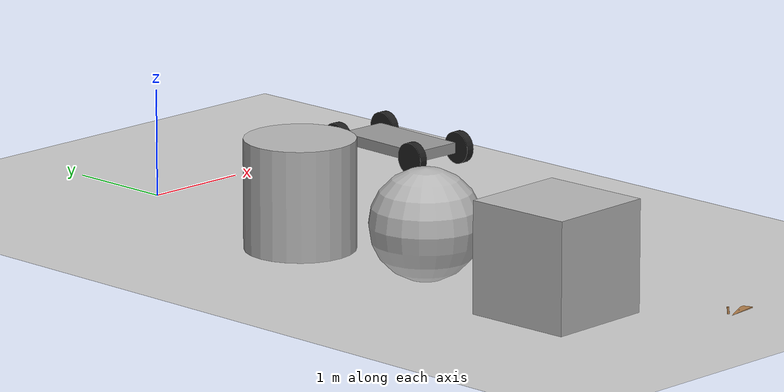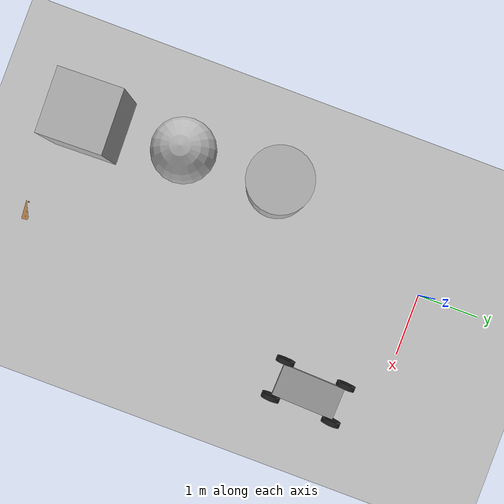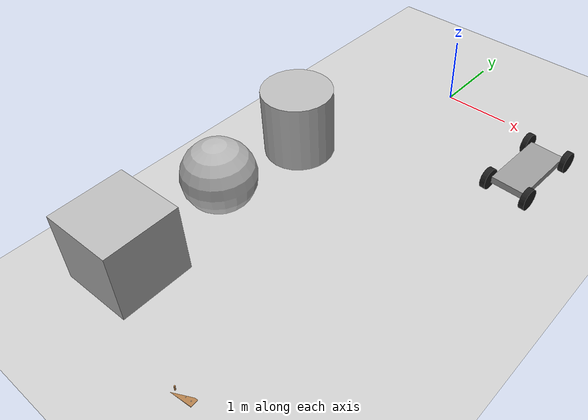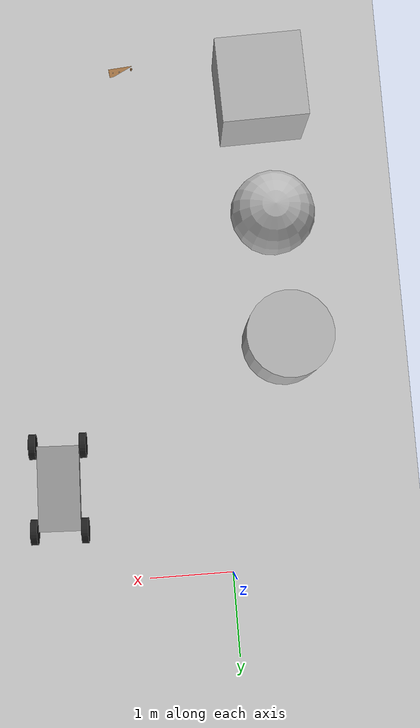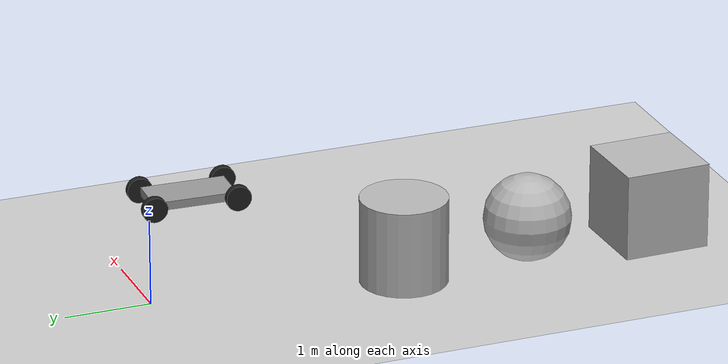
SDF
<sdf version="1.6">
 <world name="default">
  <light name="sun" type="directional">
   <pose>0 0 10 0 -0 0</pose>
   <diffuse>0.8 0.8 0.8 1</diffuse>
   <specular>0.2 0.2 0.2 1</specular>
   <attenuation>
    <range>1000</range>
    <constant>0.9</constant>
    <linear>0.01</linear>
    <quadratic>0.001</quadratic>
   </attenuation>
   <direction>-0.5 0.1 -0.9</direction>
  </light>
  <model name="ground_plane">
   <static>1</static>
   <link name="link">
    <collision name="collision">
     <geometry><plane><normal>0 0 1</normal><size>100 100</size></plane></geometry>
     <surface><friction><ode><mu>100</mu><mu2>50</mu2></ode></friction></surface>
    </collision>
    <visual name="visual">
     <cast_shadows>0</cast_shadows>
     <geometry><plane><normal>0 0 1</normal><size>100 100</size></plane></geometry>
     <material>
      <script><uri>file://media/materials/scripts/gazebo.material</uri><name>Gazebo/Grey</name></script>
     </material>
    </visual>
   </link>
  </model>
  <gravity>0 0 -9.8</gravity>
  <magnetic_field>6e-06 2.3e-05 -4.2e-05</magnetic_field>
  <atmosphere type="adiabatic"/>
  <physics name="default_physics" default="0" type="ode">
   <max_step_size>0.001</max_step_size>
   <real_time_factor>1</real_time_factor>
   <real_time_update_rate>1000</real_time_update_rate>
  </physics>
  <scene><ambient>0.4 0.4 0.4 1</ambient><background>0.7 0.7 0.7 1</background><shadows>1</shadows></scene>
  <spherical_coordinates>
   <surface_model>EARTH_WGS84</surface_model>
   <latitude_deg>0</latitude_deg>
   <longitude_deg>0</longitude_deg>
   <elevation>0</elevation>
   <heading_deg>0</heading_deg>
  </spherical_coordinates>
  <model name="wooden_peg_board">
   <link name="wooden_board::base">
    <pose>0 0 0.00523 0 -0 0</pose>
    <inertial>
     <mass>0.2765</mass>
     <inertia>
      <ixx>0.0025148</ixx>
      <ixy>0</ixy>
      <ixz>0</ixz>
      <iyy>0.00024037</iyy>
      <iyz>0</iyz>
      <izz>0.00275013</izz>
     </inertia>
    </inertial>
    <collision name="collision">
     <geometry><box><size>0.1016 0.3302 0.01046</size></box></geometry>
     <surface>
      <contact>
       <poissons_ratio>0.347</poissons_ratio>
       <elastic_modulus>8.8e+09</elastic_modulus>
       <ode><kp>100000</kp><kd>100</kd><max_vel>100</max_vel><min_depth>0.001</min_depth></ode>
      </contact>
      <friction>
       <torsional>
        <coefficient>1</coefficient>
        <use_patch_radius>0</use_patch_radius>
        <surface_radius>0.01</surface_radius>
       </torsional>
      </friction>
     </surface>
    </collision>
    <visual name="visual">
     <geometry><box><size>0.1016 0.3302 0.01046</size></box></geometry>
     <material>
      <script><uri>file://media/materials/scripts/gazebo.material</uri><name>Gazebo/Wood</name></script>
     </material>
    </visual>
    <visual name="tee_nut_1">
     <pose>0 -0.116 0 0 -0 0</pose>
     <geometry><cylinder><radius>0.00635</radius><length>0.0105646</length></cylinder></geometry>
     <material>
      <script><uri>file://media/materials/scripts/gazebo.material</uri><name>Gazebo/Grey</name></script>
     </material>
    </visual>
    <visual name="tee_nut_2">
     <pose>0 -0.038 0 0 -0 0</pose>
     <geometry><cylinder><radius>0.00635</radius><length>0.0105646</length></cylinder></geometry>
     <material>
      <script><uri>file://media/materials/scripts/gazebo.material</uri><name>Gazebo/Grey</name></script>
     </material>
    </visual>
    <visual name="tee_nut_3">
     <pose>0 0.038 0 0 -0 0</pose>
     <geometry><cylinder><radius>0.00635</radius><length>0.0105646</length></cylinder></geometry>
     <material>
      <script><uri>file://media/materials/scripts/gazebo.material</uri><name>Gazebo/Grey</name></script>
     </material>
    </visual>
    <visual name="tee_nut_4">
     <pose>0 0.116 0 0 -0 0</pose>
     <geometry><cylinder><radius>0.00635</radius><length>0.0105646</length></cylinder></geometry>
     <material>
      <script><uri>file://media/materials/scripts/gazebo.material</uri><name>Gazebo/Grey</name></script>
     </material>
    </visual>
   </link>
   <link name="peg::link">
    <pose>0 0.116 0.04 0 -0 0</pose>
    <inertial>
     <mass>0.0175</mass>
     <inertia>
      <ixx>9.74923e-06</ixx>
      <ixy>0</ixy>
      <ixz>0</ixz>
      <iyy>9.74923e-06</iyy>
      <iyz>0</iyz>
      <izz>8.31797e-07</izz>
     </inertia>
    </inertial>
    <collision name="collision">
     <geometry><cylinder><radius>0.00975</radius><length>0.08</length></cylinder></geometry>
     <surface>
      <contact>
       <poissons_ratio>0.347</poissons_ratio>
       <elastic_modulus>8.8e+09</elastic_modulus>
       <ode><kp>100000</kp><kd>100</kd><max_vel>100</max_vel><min_depth>0.001</min_depth></ode>
      </contact>
      <friction>
       <torsional>
        <coefficient>1</coefficient>
        <use_patch_radius>0</use_patch_radius>
        <surface_radius>0.01</surface_radius>
       </torsional>
      </friction>
     </surface>
    </collision>
    <visual name="visual">
     <geometry><cylinder><radius>0.00975</radius><length>0.08</length></cylinder></geometry>
     <material>
      <script><uri>file://media/materials/scripts/gazebo.material</uri><name>Gazebo/Wood</name></script>
     </material>
    </visual>
   </link>
   <joint name="board_peg" type="revolute">
    <parent>wooden_board::base</parent>
    <child>peg::link</child>
    <axis>
     <xyz>0 0 1</xyz>
     <limit><upper>0</upper><lower>0</lower></limit>
     <use_parent_model_frame>0</use_parent_model_frame>
     <dynamics><spring_reference>0</spring_reference><spring_stiffness>0</spring_stiffness></dynamics>
    </axis>
   </joint>
   <pose>0.888576 -6.29195 -0.016968 -0.038059 0.095861 1.66282</pose>
  </model>
  <model name="textured_shapes">
   <pose>-0.775847 -4.18543 0.6898 0 -0 0.024738</pose>
   <link name="box">
    <pose>0 -1.5 0 0 -0 0</pose>
    <collision name="collision"><geometry><box><size>1 1 1</size></box></geometry></collision>
    <visual name="visual">
     <geometry><box><size>1 1 1</size></box></geometry>
     <material>
      <script>
       <uri>model://textured_shapes/materials/scripts</uri>
       <uri>model://textured_shapes/materials/textures</uri>
       <name>TexturedShape/Squares</name>
      </script>
     </material>
    </visual>
    <inertial>
     <inertia><ixx>1</ixx><ixy>0</ixy><ixz>0</ixz><iyy>1</iyy><iyz>0</iyz><izz>1</izz></inertia>
     <mass>1</mass>
    </inertial>
   </link>
   <link name="sphere">
    <collision name="collision"><geometry><sphere><radius>0.5</radius></sphere></geometry></collision>
    <visual name="visual">
     <geometry><sphere><radius>0.5</radius></sphere></geometry>
     <material>
      <script>
       <uri>model://textured_shapes/materials/scripts</uri>
       <uri>model://textured_shapes/materials/textures</uri>
       <name>TexturedShape/Squares</name>
      </script>
     </material>
    </visual>
    <inertial>
     <inertia><ixx>1</ixx><ixy>0</ixy><ixz>0</ixz><iyy>1</iyy><iyz>0</iyz><izz>1</izz></inertia>
     <mass>1</mass>
    </inertial>
   </link>
   <link name="cylinder">
    <pose>0 1.5 0 0 -0 0</pose>
    <collision name="collision">
     <geometry><cylinder><radius>0.5</radius><length>1</length></cylinder></geometry>
    </collision>
    <visual name="visual">
     <geometry><cylinder><radius>0.5</radius><length>1</length></cylinder></geometry>
     <material>
      <script>
       <uri>model://textured_shapes/materials/scripts</uri>
       <uri>model://textured_shapes/materials/textures</uri>
       <name>TexturedShape/Squares</name>
      </script>
     </material>
    </visual>
    <inertial>
     <inertia><ixx>1</ixx><ixy>0</ixy><ixz>0</ixz><iyy>1</iyy><iyz>0</iyz><izz>1</izz></inertia>
     <mass>1</mass>
    </inertial>
   </link>
  </model>
  <model name="cart_front_steer">
   <link name="chassis">
    <pose>0 0 0.15 0 -0 0</pose>
    <inertial>
     <pose>0.1 0 0 0 -0 0</pose>
     <mass>10</mass>
     <inertia>
      <ixx>0.216667</ixx>
      <iyy>0.841667</iyy>
      <izz>1.04167</izz>
      <ixy>0</ixy>
      <ixz>0</ixz>
      <iyz>0</iyz>
     </inertia>
    </inertial>
    <collision name="collision"><geometry><box><size>1 0.5 0.1</size></box></geometry></collision>
    <visual name="visual">
     <geometry><box><size>1 0.5 0.1</size></box></geometry>
     <material>
      <script><uri>file://media/materials/scripts/gazebo.material</uri><name>Gazebo/Grey</name></script>
     </material>
    </visual>
   </link>
   <link name="wheel_front_left">
    <pose>0.5 0.298 0.15 -1.5708 -0.087266 0</pose>
    <inertial>
     <mass>0.5</mass>
     <inertia>
      <ixx>0.00307917</ixx>
      <iyy>0.00307917</iyy>
      <izz>0.005625</izz>
      <ixy>0</ixy>
      <ixz>0</ixz>
      <iyz>0</iyz>
     </inertia>
    </inertial>
    <collision name="collision">
     <geometry><cylinder><radius>0.15</radius><length>0.08</length></cylinder></geometry>
    </collision>
    <visual name="visual">
     <geometry><cylinder><radius>0.15</radius><length>0.08</length></cylinder></geometry>
     <material>
      <script><uri>file://media/materials/scripts/gazebo.material</uri><name>Gazebo/Black</name></script>
     </material>
    </visual>
   </link>
   <joint name="wheel_front_left_steer_spin" type="universal">
    <parent>chassis</parent>
    <child>wheel_front_left</child>
    <axis>
     <xyz>0 -1 0</xyz>
     <limit><lower>-0.610865</lower><upper>0.610865</upper></limit>
     <use_parent_model_frame>0</use_parent_model_frame>
     <dynamics><spring_reference>0</spring_reference><spring_stiffness>0</spring_stiffness></dynamics>
    </axis>
    <axis2>
     <xyz>0 0 1</xyz>
     <use_parent_model_frame>0</use_parent_model_frame>
     <dynamics><spring_reference>0</spring_reference><spring_stiffness>0</spring_stiffness></dynamics>
    </axis2>
   </joint>
   <link name="wheel_front_right">
    <pose>0.5 -0.298 0.15 -1.5708 -0.087266 0</pose>
    <inertial>
     <mass>0.5</mass>
     <inertia>
      <ixx>0.00307917</ixx>
      <iyy>0.00307917</iyy>
      <izz>0.005625</izz>
      <ixy>0</ixy>
      <ixz>0</ixz>
      <iyz>0</iyz>
     </inertia>
    </inertial>
    <collision name="collision">
     <geometry><cylinder><radius>0.15</radius><length>0.08</length></cylinder></geometry>
    </collision>
    <visual name="visual">
     <geometry><cylinder><radius>0.15</radius><length>0.08</length></cylinder></geometry>
     <material>
      <script><uri>file://media/materials/scripts/gazebo.material</uri><name>Gazebo/Black</name></script>
     </material>
    </visual>
   </link>
   <joint name="wheel_front_right_steer_spin" type="universal">
    <parent>chassis</parent>
    <child>wheel_front_right</child>
    <axis>
     <xyz>0 -1 0</xyz>
     <limit><lower>-0.610865</lower><upper>0.610865</upper></limit>
     <use_parent_model_frame>0</use_parent_model_frame>
     <dynamics><spring_reference>0</spring_reference><spring_stiffness>0</spring_stiffness></dynamics>
    </axis>
    <axis2>
     <xyz>0 0 1</xyz>
     <use_parent_model_frame>0</use_parent_model_frame>
     <dynamics><spring_reference>0</spring_reference><spring_stiffness>0</spring_stiffness></dynamics>
    </axis2>
   </joint>
   <link name="wheel_rear_left">
    <pose>-0.5 0.298 0.15 -1.5708 0 0</pose>
    <inertial>
     <mass>0.5</mass>
     <inertia>
      <ixx>0.00307917</ixx>
      <iyy>0.00307917</iyy>
      <izz>0.005625</izz>
      <ixy>0</ixy>
      <ixz>0</ixz>
      <iyz>0</iyz>
     </inertia>
    </inertial>
    <collision name="collision">
     <geometry><cylinder><radius>0.15</radius><length>0.08</length></cylinder></geometry>
    </collision>
    <visual name="visual">
     <geometry><cylinder><radius>0.15</radius><length>0.08</length></cylinder></geometry>
     <material>
      <script><uri>file://media/materials/scripts/gazebo.material</uri><name>Gazebo/Black</name></script>
     </material>
    </visual>
   </link>
   <joint name="wheel_rear_left_spin" type="revolute">
    <parent>chassis</parent>
    <child>wheel_rear_left</child>
    <axis>
     <xyz>0 0 1</xyz>
     <use_parent_model_frame>0</use_parent_model_frame>
     <limit><lower>-1e+16</lower><upper>1e+16</upper></limit>
     <dynamics><spring_reference>0</spring_reference><spring_stiffness>0</spring_stiffness></dynamics>
    </axis>
   </joint>
   <link name="wheel_rear_right">
    <pose>-0.5 -0.298 0.15 -1.5708 0 0</pose>
    <inertial>
     <mass>0.5</mass>
     <inertia>
      <ixx>0.00307917</ixx>
      <iyy>0.00307917</iyy>
      <izz>0.005625</izz>
      <ixy>0</ixy>
      <ixz>0</ixz>
      <iyz>0</iyz>
     </inertia>
    </inertial>
    <collision name="collision">
     <geometry><cylinder><radius>0.15</radius><length>0.08</length></cylinder></geometry>
    </collision>
    <visual name="visual">
     <geometry><cylinder><radius>0.15</radius><length>0.08</length></cylinder></geometry>
     <material>
      <script><uri>file://media/materials/scripts/gazebo.material</uri><name>Gazebo/Black</name></script>
     </material>
    </visual>
   </link>
   <joint name="wheel_rear_right_spin" type="revolute">
    <parent>chassis</parent>
    <child>wheel_rear_right</child>
    <axis>
     <xyz>0 0 1</xyz>
     <use_parent_model_frame>0</use_parent_model_frame>
     <limit><lower>-1e+16</lower><upper>1e+16</upper></limit>
     <dynamics><spring_reference>0</spring_reference><spring_stiffness>0</spring_stiffness></dynamics>
    </axis>
   </joint>
   <pose>1.98462 -1.15518 0.189792 -2.6e-05 -0 1.53351</pose>
  </model>
 </world>
</sdf>
